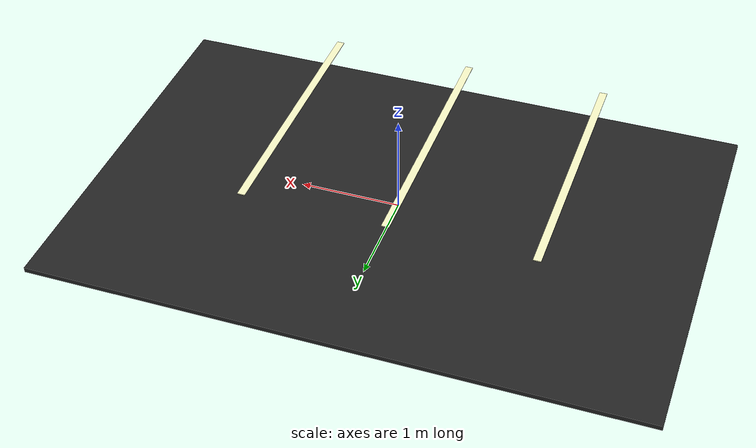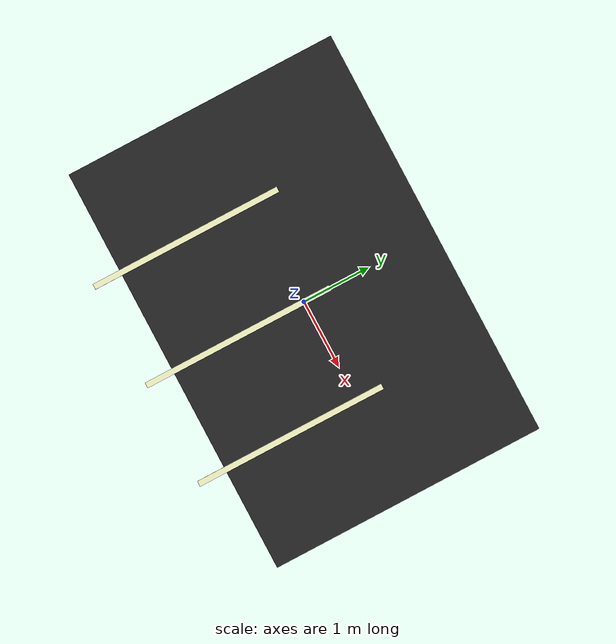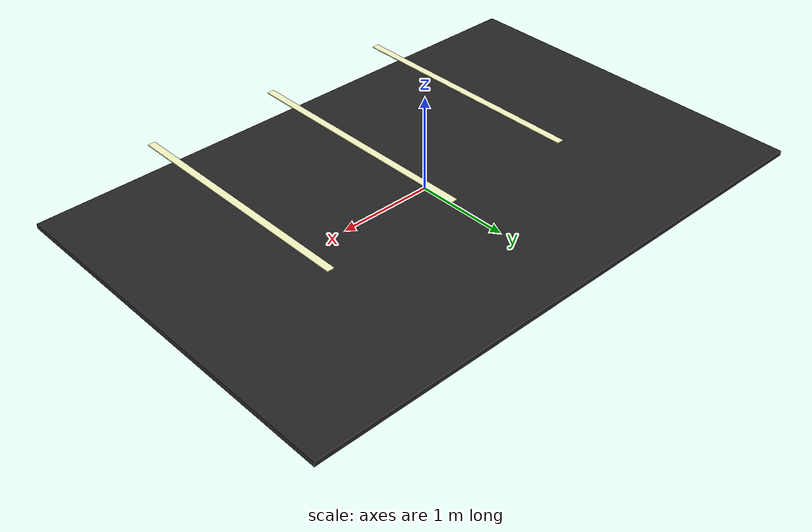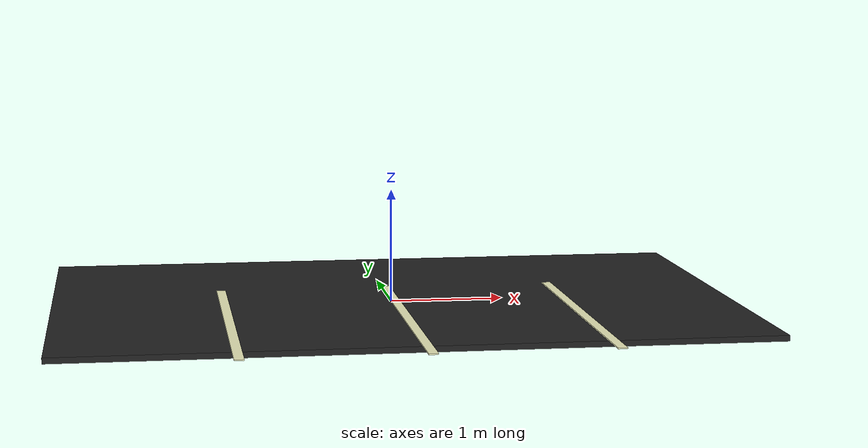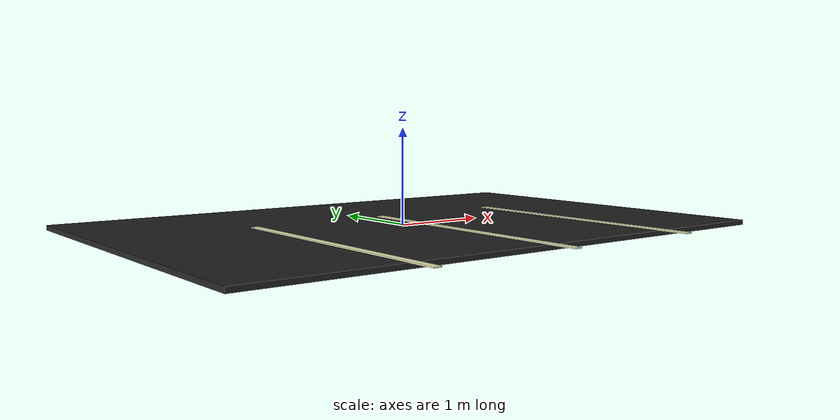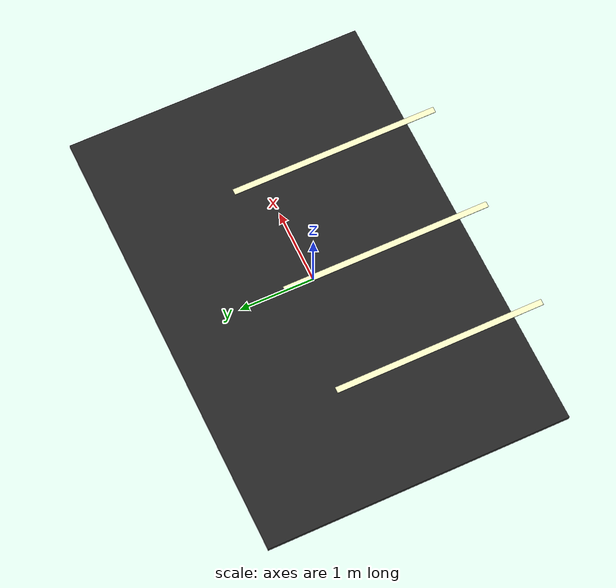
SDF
<?xml version="1.0"?>
<sdf version="1.6">
  <model name="parking_1">
    <static>true</static>
    <link name="surface">
      <collision name="collision">
        <geometry><box><size>6 4 0.05</size></box></geometry>
      </collision>
      <visual name="visual">
        <geometry><box><size>6 4 0.05</size></box></geometry>
        <material>
          <ambient>0.15 0.15 0.15 1</ambient>
          <diffuse>0.15 0.15 0.15 1</diffuse>
        </material>
      </visual>
    </link>
    <link name="divider_1">
      <pose>-1.5 -1.0 0.051 0 0 0</pose>
      <visual name="visual">
        <geometry><box><size>0.08 2.8 0.01</size></box></geometry>
        <material><ambient>1 1 0.8 1</ambient><diffuse>1 1 0.8 1</diffuse></material>
      </visual>
    </link>
    <link name="divider_2">
      <pose>0 -1.0 0.051 0 0 0</pose>
      <visual name="visual">
        <geometry><box><size>0.08 2.8 0.01</size></box></geometry>
        <material><ambient>1 1 0.8 1</ambient><diffuse>1 1 0.8 1</diffuse></material>
      </visual>
    </link>
    <link name="divider_3">
      <pose>1.5 -1.0 0.051 0 0 0</pose>
      <visual name="visual">
        <geometry><box><size>0.08 2.8 0.01</size></box></geometry>
        <material><ambient>1 1 0.8 1</ambient><diffuse>1 1 0.8 1</diffuse></material>
      </visual>
    </link>
  </model>
</sdf>
